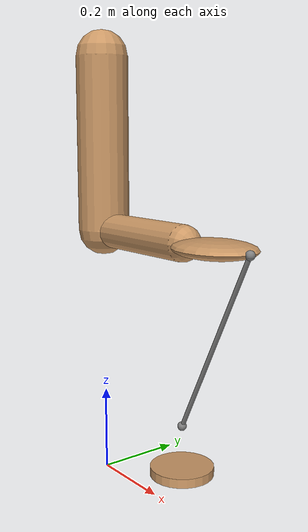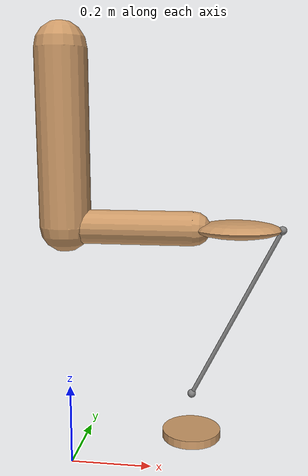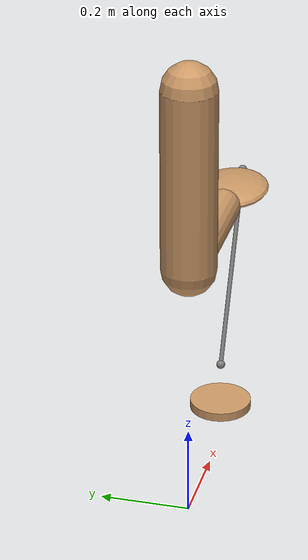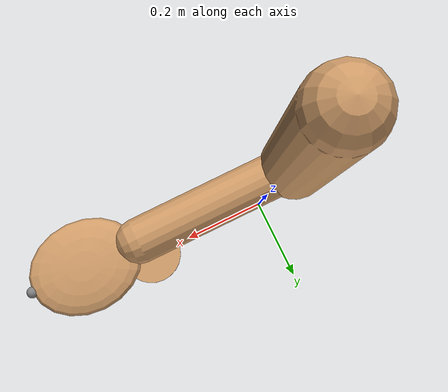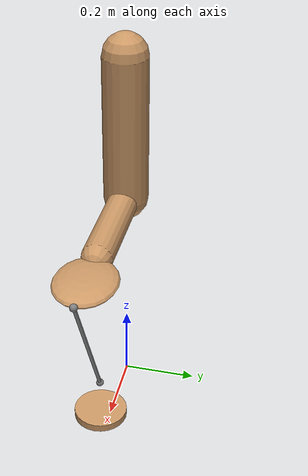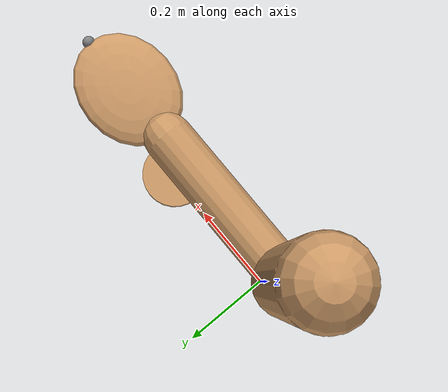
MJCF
<mujoco model="example">
  <default>
    <geom rgba=".8 .6 .4 1" />
  </default>

  <asset>
    <texture
            type="skybox"
            builtin="gradient"
            rgb1="1 1 1"
            rgb2=".6 .8 1"
            width="256"
            height="256"
        />
  </asset>

  <worldbody>
    <light pos="0 1 1" dir="0 -1 -1" diffuse="1 1 1" />
    <body pos="0 0 1">
      <joint type="ball" />
      <geom type="capsule" size="0.06" fromto="0 0 0  0 0 -.4" />
      <body pos="0 0 -0.4">
        <joint axis="0 1 0" />
        <joint axis="1 0 0" />
        <geom type="capsule" size="0.04" fromto="0 0 0  .3 0 0" />
        <body pos=".3 0 0">
          <joint axis="0 1 0" />
          <joint axis="0 0 1" />
          <geom pos=".1 0 0" size="0.1 0.08 0.02" type="ellipsoid" />
          <site name="end1" pos="0.2 0 0" size="0.01" />
        </body>
      </body>
    </body>

    <body pos="0.3 0 0.1">
      <joint type="free" />
      <geom size="0.07 0.01" type="cylinder" />
      <site name="end2" pos="0 0 0.1" size="0.01" />
    </body>
  </worldbody>

  <tendon>
    <spatial limited="true" range="0 0.6" width="0.005">
      <site site="end1" />
      <site site="end2" />
    </spatial>
  </tendon>
</mujoco>
